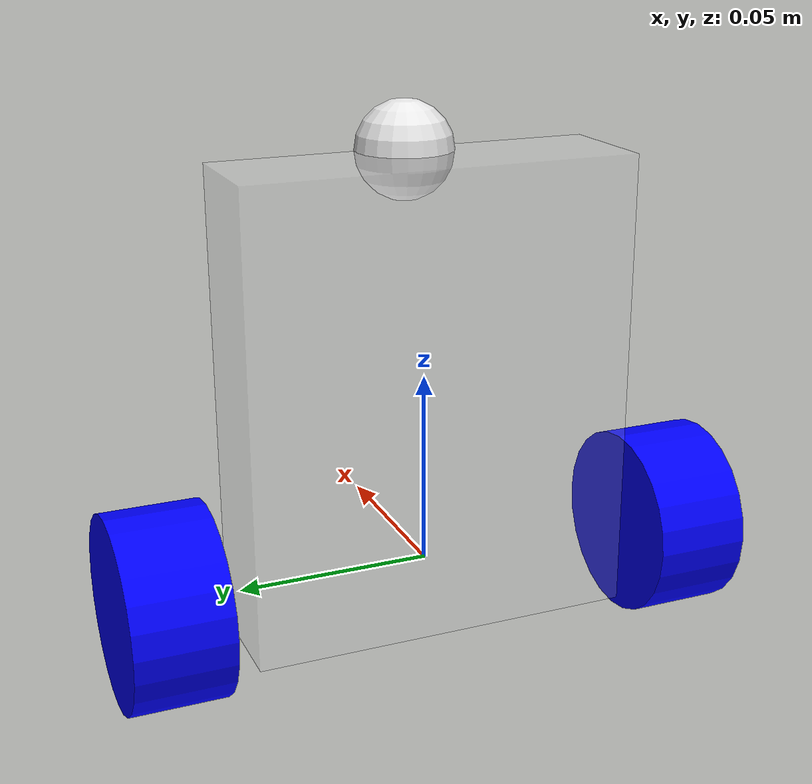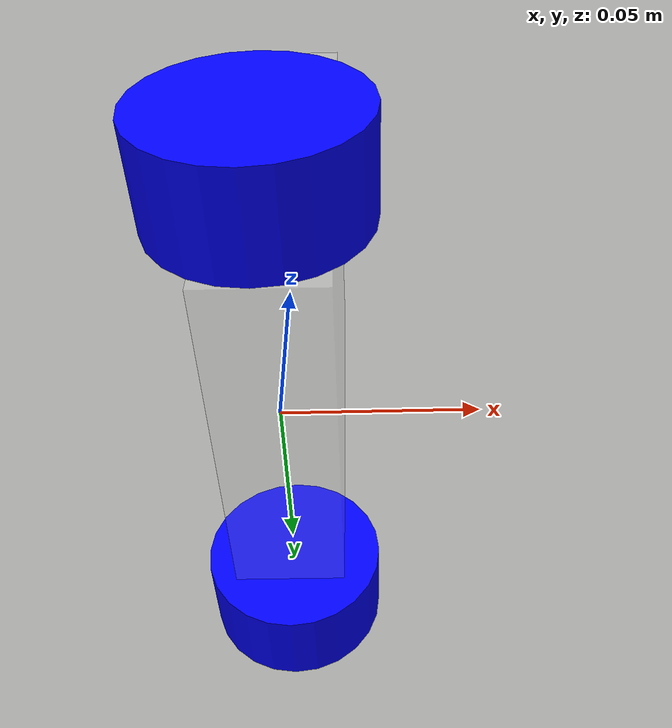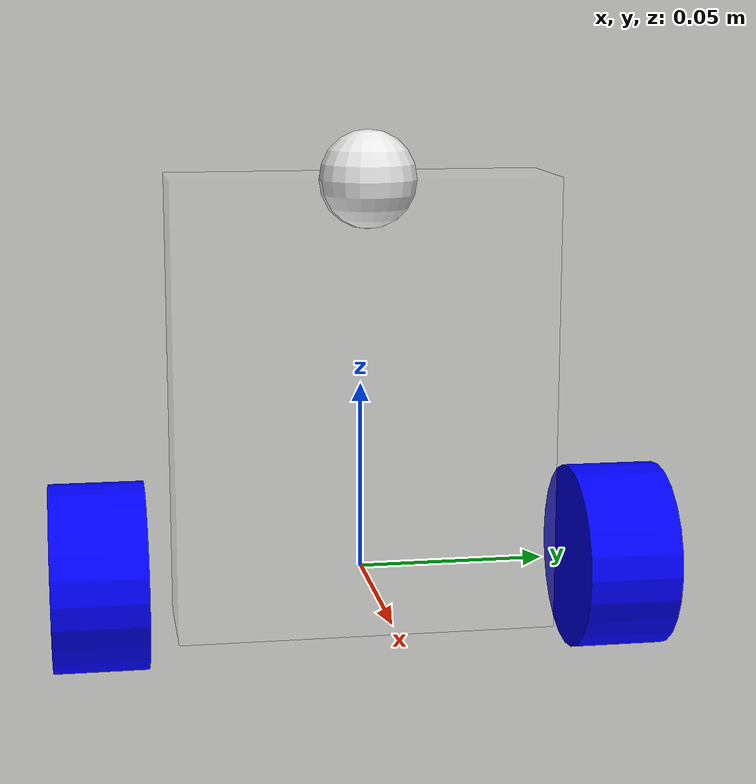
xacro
<?xml version="1.0"?>
<robot xmlns:xacro="http://www.ros.org/wiki/xacro"  name="robot">

    <xacro:include filename="inertial_macros.xacro"/> <!-- Include the inertial macros for calculating inertia properties of links. -->
    <xacro:include filename="gazebo_control.xacro"/> <!-- Include the gazebo control macros for controlling the robot in Gazebo. -->

    <!-- materials -->
    <material name="grey">
        <color rgba="0.2 0.2 0.2 1"/>
    </material>

    <material name="white">
        <color rgba=".9 .9 .9 .2"/>
    </material>

    <material name="orange">
        <color rgba="1 0.3 0.1 1"/>
    </material>

    <material name="blue">
        <color rgba="0 0 1 1"/>
    </material>

    <!-- This is a simple balancing bot with a base, two wheels, and a caster wheel. -->
    <link name="base_link">
        <xacro:inertial_box mass="0.01" x="0.1" y="0.1" z="0.1">
            <origin xyz="0 0 0" rpy="0 0 0"/>
        </xacro:inertial_box>
    </link>

    <joint name="base_to_base2_joint" type="continuous">
        <parent link="base_link"/>
        <child link="base2_link"/>
        <axis xyz="0 1 0"/>
        <origin rpy="0 0 0" xyz="0 0 0"/>
    </joint>

    <link name="base2_link">
        <xacro:inertial_box mass="0.01" x="0.1" y="0.1" z="0.1">
            <origin xyz="0 0 0" rpy="0 0 0"/>
        </xacro:inertial_box>
    </link>

    <joint name="base2_to_frame_joint" type="fixed">
        <parent link="base2_link"/>
        <child link="frame_link"/>
        <origin rpy="0 0 0" xyz="0 0 .105"/>
    </joint>

    <link name="frame_link">
        <visual>
            <origin xyz="0 0 -.06" rpy="0 0 0"/>
            <geometry>
                <box size=".03 .1 .12" />
            </geometry>
            <material name="white" />
        </visual>
        <collision>
            <origin xyz="0 0 -.06" rpy="0 0 0"/>
            <geometry>
                <box size=".03 .1 .12" />
            </geometry>
        </collision>
        <xacro:inertial_box mass="0.05" x=".03" y=".1" z=".12">
            <origin xyz="0 0 -.06" rpy="0 0 0"/>
        </xacro:inertial_box>
    </link>

    <joint name="left_wheel_joint" type="continuous">
        <parent link="base2_link"/>
        <child link="left_wheel_link"/>
        <origin xyz="0 0.07 0" rpy="-${pi/2} 0 0"/>
        <axis xyz="0 0 1">
            <limit effort="10"/>
        </axis>
    </joint>

    <link name="left_wheel_link">
        <visual>
            <geometry>
                <cylinder length="0.025" radius="0.025" />
            </geometry>
            <material name="blue"/>
        </visual>
        <collision>
            <origin xyz="0 0 0" rpy="0 0 0"/>
            <geometry>
                <cylinder length="0.025" radius="0.025" />
            </geometry>
        </collision>
        <xacro:inertial_cylinder mass="0.05" length=".025" radius=".025">
            <origin xyz="0 0 0" rpy="0 0 0"/>
        </xacro:inertial_cylinder>
    </link>

    <joint name="right_wheel_joint" type="continuous">
        <parent link="base2_link"/>
        <child link="right_wheel_link"/>
        <origin xyz="0 -0.07 0" rpy="-${pi/2} 0 0"/>
        <axis xyz="0 0 1">
            <limit effort="10"/>
        </axis>
    </joint>

    <link name="right_wheel_link">
        <visual>
            <geometry>
                <cylinder length="0.025" radius="0.025" />
            </geometry>
            <material name="blue"/>
        </visual>
        <collision>
            <origin xyz="0 0 0" rpy="0 0 0"/>
            <geometry>
                <cylinder length="0.025" radius="0.025" />
            </geometry>
        </collision>
        <xacro:inertial_cylinder mass="0.05" length=".025" radius=".025">
            <origin xyz="0 0 0" rpy="0 0 0"/>
        </xacro:inertial_cylinder>
    </link>

    <joint name="caster_wheel_joint" type="fixed">
        <parent link="frame_link"/>
        <child link="caster_wheel_link"/>
        <origin xyz="0.0125 0 0" rpy="0 0 0"/>
    </joint>

    <link name="caster_wheel_link">
        <visual>
            <geometry>
                <sphere radius="0.0125" />
            </geometry>
        </visual>
        <collision>
            <origin xyz="0 0 0" rpy="0 0 0"/>
            <geometry>
                <sphere radius="0.0125" />
            </geometry>
        </collision>
        <xacro:inertial_sphere mass="0.1" radius="0.0125">
            <origin xyz="0 0 0" rpy="0 0 0"/>
        </xacro:inertial_sphere>
    </link>

    <gazebo reference="caster_wheel_link">
        <material>Gazebo/White</material>
        <mu1 value="0.001"/>
        <mu2 value="0.001"/>
    </gazebo>
    <gazebo reference="left_wheel_link">
        <mu1 value="0.85"/>
        <mu2 value="0.85"/>
    </gazebo>
    <gazebo reference="right_wheel_link">
        <mu1 value="0.85"/>
        <mu2 value="0.85"/>
    </gazebo>

</robot>
